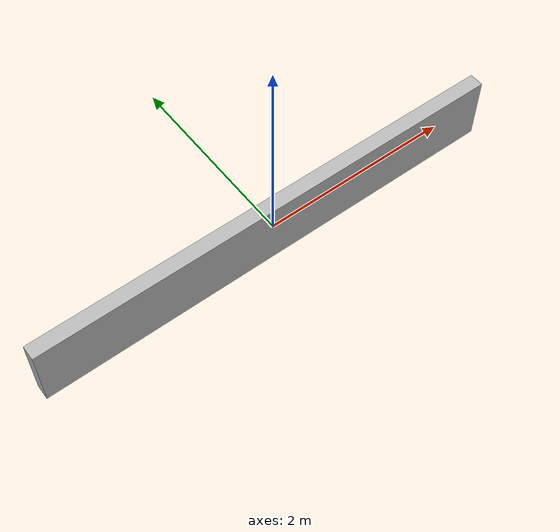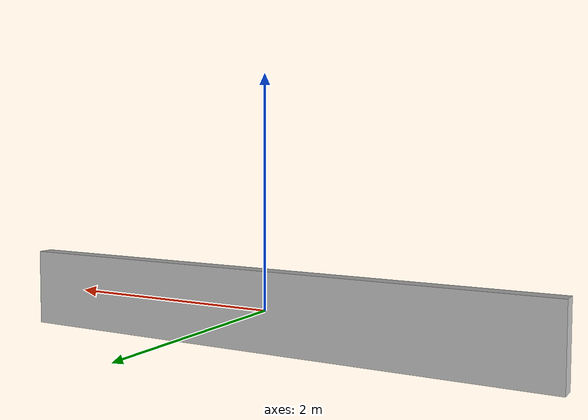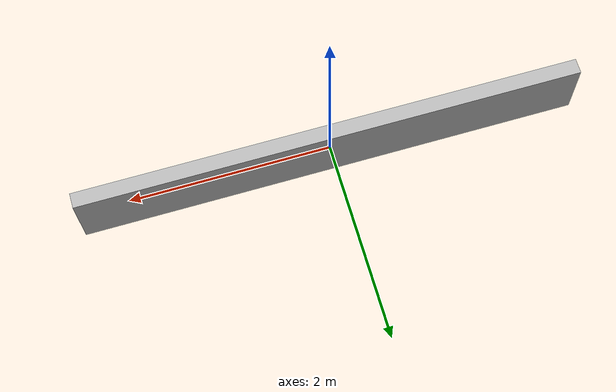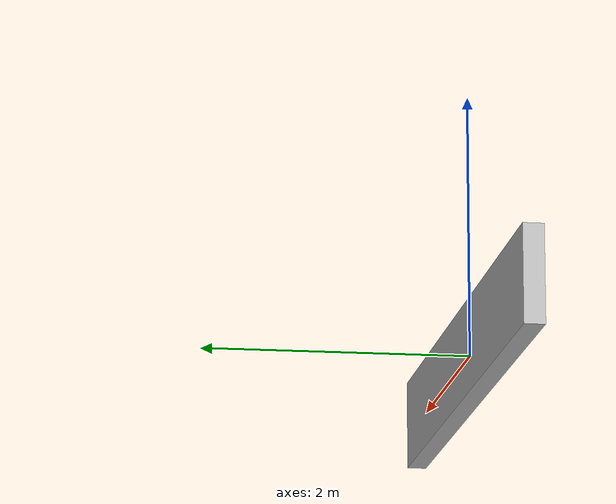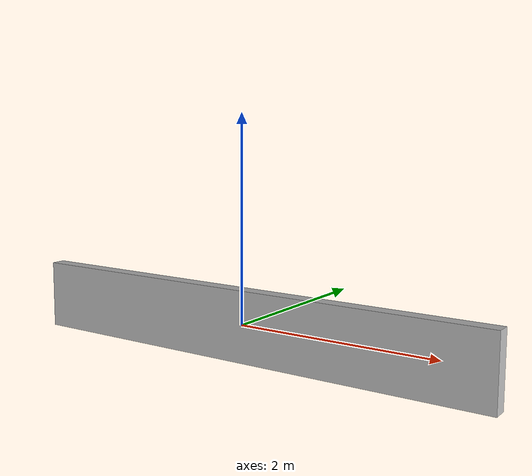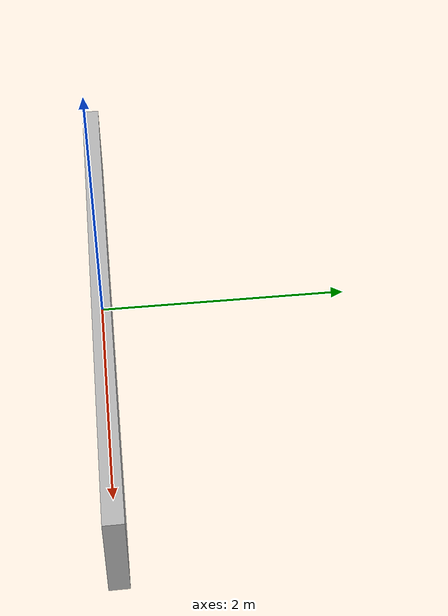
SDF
<?xml version='1.0'?>
<sdf version='1.6'>
    <model name='s_wall'>
      <link name='Wall_1'>
        <collision name='Wall_Collision'>
          <geometry>
            <box>
              <size>5 0.15 0.7</size>
            </box>
          </geometry>
        </collision>
        <visual name='Wall_Visual'>
          <geometry>
            <box>
              <size>5 0.15 0.7</size>
            </box>
          </geometry>
        </visual>
      </link>
   </model>
</sdf>
